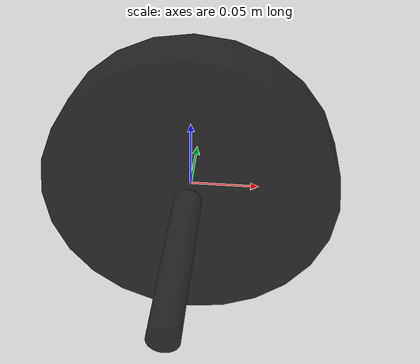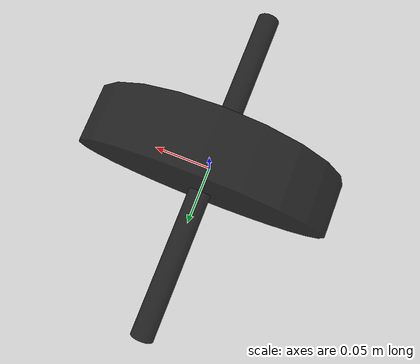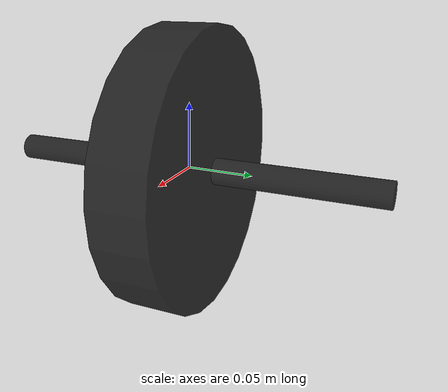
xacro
<?xml version="1.0"?>

<robot name="scooter" xmlns:xacro="https://www.ros.org/wiki/xacro">

    <xacro:include filename="$(find autonomous-scooter)/urdf/properties.xacro"/>

    <link name="base_link">
        <visual>
            <geometry>
                <cylinder length="0.3" radius="0.01"/>
            </geometry>
            <origin xyz="0.0 0.0 0.0" rpy="${pi/2} 0.0 0.0"/>
            <material name='black'/>
        </visual>
        <collision>
            <geometry>
                <cylinder length="1" radius="0.1"/>
            </geometry>
            <origin xyz="0.0 0.0 0.0" rpy="${pi/2} 0.0 0.0"/>
        </collision>
        <mass value="${mass_front_wheel}"/>
        <inertia ixx="${front_ixx}" ixy="${front_ixy}" ixz="${front_ixz}" iyy="${front_iyy}" iyz="${front_iyz}" izz="${front_izz}"/>
    </link>
    <!-- front wheel -->
    <link name="front_wheel_link">
        <visual>
            <geometry>
                <cylinder length="${thick_wheel}" radius="${rad_front_wheel}"/>
            </geometry>
            <origin xyz="0.0 0.0 0.0" rpy="${pi/2} 0.0 0.0"/>
            <material name='black'/>
        </visual>
        <collision>
            <geometry>
                <cylinder length="${thick_wheel}" radius="${rad_front_wheel}"/>
            </geometry>
            <origin xyz="0.0 0.0 0.0" rpy="${pi/2} 0.0 0.0"/>
        </collision>
        <mass value="${mass_front_wheel}"/>
        <inertia ixx="${front_ixx}" ixy="${front_ixy}" ixz="${front_ixz}" iyy="${front_iyy}" iyz="${front_iyz}" izz="${front_izz}"/>
    </link>

        <joint name="front_wheel_to_base_joint" type="continuous">
            <parent link="base_link"/>
            <child link="front_wheel_link"/>
            <origin xyz="0.0 0.0 0.0" rpy="0.0 0.0 0.0"/>
            <axis xyz="0 1 0"/>
            <limit effort="50" velocity="5.0"/>
        </joint>

        <transmission name="wheel_motor_transmission">
            <type>transmission_interface/SimpleTransmission</type>
            <joint name="front_wheel_to_base_joint">
                <hardwareInterface>hardware_interface/VelocityJointInterface</hardwareInterface>
            </joint>
            <actuator name="wheel_motor">
                <mechanicalReduction>1</mechanicalReduction>
            </actuator>
        </transmission>

        <gazebo reference="front_wheel_link">
            <mu1 value="200.0"/>
            <mu2 value="100.0"/>
            <kp value="10000000.0" />
            <kd value="1.0" />>
        </gazebo>

    <!-- Gazebo plugin for ROS Control -->
    <gazebo>
        <plugin name="gazebo_ros_control" filename="libgazebo_ros_control.so">
        <robotNamespace>/</robotNamespace>
        </plugin>
    </gazebo>

</robot>

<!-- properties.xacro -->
<robot name="xacro_properties" xmlns:xacro="http://ros.org/wiki/xacro">

    <!-- color properties -->
    <material name='black'>
        <color rgba="0 0 0 0.8"/>
    </material>
    <material name='gray'>
        <color rgba="0.4 0.4 0.4 0.7"/>
    </material>
    <material name='blue'>
        <color rgba="0 0 0.8 0.7"/>
    </material>

    <!-- xacro properties -->
    <xacro:property name="thick_wheel" value="0.044" />

        <!-- frame_link -->
    <xacro:property name="scale" value="${0.01}" />
    <xacro:property name="mass_frame_link" value="6.5" />
    <xacro:property name="front_ixx" value="1.0" />
    <xacro:property name="front_ixy" value="0.0" />
    <xacro:property name="front_ixz" value="0.0" />
    <xacro:property name="front_iyy" value="1.0" />
    <xacro:property name="front_iyz" value="0.0" />
    <xacro:property name="front_izz" value="1.0" />
        <!-- steering_link -->
    <xacro:property name="thick_steering" value="0.02" />
    <xacro:property name="alpha" value="${80 * pi / 180}" />
    <xacro:property name="steering_length" value="0.2" />
    <xacro:property name="mass_steering_link" value="1.0" />
    <xacro:property name="steering_ixx" value="1.0" />
    <xacro:property name="steering_ixy" value="0.0" />
    <xacro:property name="steering_ixz" value="0.0" />
    <xacro:property name="steering_iyy" value="1.0" />
    <xacro:property name="steering_iyz" value="0.0" />
    <xacro:property name="steering_izz" value="1.0" />
        <!-- front wheel  -->
    <xacro:property name="rad_front_wheel" value="${0.216/2}" />
    <xacro:property name="mass_front_wheel" value="3.0" />
    <xacro:property name="front_ixx" value="1.0" />
    <xacro:property name="front_ixy" value="0.0" />
    <xacro:property name="front_ixz" value="0.0" />
    <xacro:property name="front_iyy" value="1.0" />
    <xacro:property name="front_iyz" value="0.0" />
    <xacro:property name="front_izz" value="1.0" />
        <!-- back axis -->
    <xacro:property name="length_back_axis" value="0.3" />
    <xacro:property name="rad_back_wheel" value="${0.203/2}" />
        <!-- back wheel inertia -->
    <xacro:property name="mass_back_wheel" value="1.5" />
    <xacro:property name="back_ixx" value="1.0" />
    <xacro:property name="back_ixy" value="0.0" />
    <xacro:property name="back_ixz" value="0.0" />
    <xacro:property name="back_iyy" value="1.0" />
    <xacro:property name="back_iyz" value="0.0" />
    <xacro:property name="back_izz" value="1.0" />

</robot>
